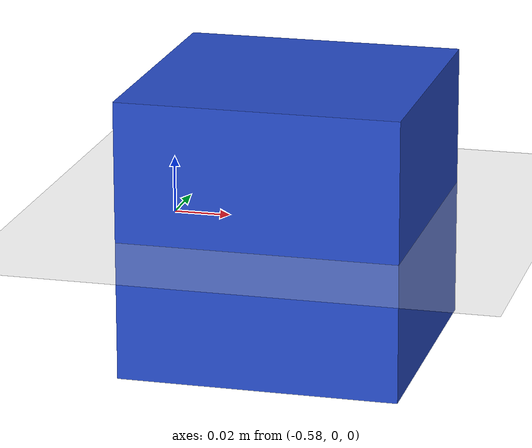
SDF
<?xml version="1.0" ?>
<sdf version="1.5">
  <world name="default">
    <light name='sun' type='directional'>
      <cast_shadows>1</cast_shadows>
      <pose>0 0 10 0 -0 0</pose>
      <diffuse>0.8 0.8 0.8 1</diffuse>
      <specular>0.2 0.2 0.2 1</specular>
      <attenuation>
        <range>1000</range>
        <constant>0.9</constant>
        <linear>0.01</linear>
        <quadratic>0.001</quadratic>
      </attenuation>
      <direction>-0.5 0.1 -0.9</direction>
      <spot>
        <inner_angle>0</inner_angle>
        <outer_angle>0</outer_angle>
        <falloff>0</falloff>
      </spot>
    </light>
    <model name='ground_plane'>
      <static>1</static>
      <link name='link'>
        <collision name='collision'>
          <geometry>
            <plane>
              <normal>0 0 1</normal>
              <size>100 100</size>
            </plane>
          </geometry>
          <surface>
            <contact>
              <collide_bitmask>65535</collide_bitmask>
              <ode/>
            </contact>
            <friction>
              <ode>
                <mu>100</mu>
                <mu2>50</mu2>
              </ode>
              <torsional>
                <ode/>
              </torsional>
            </friction>
            <bounce/>
          </surface>
          <max_contacts>10</max_contacts>
        </collision>
        <visual name='visual'>
          <cast_shadows>0</cast_shadows>
          <geometry>
            <plane>
              <normal>0 0 1</normal>
              <size>100 100</size>
            </plane>
          </geometry>
          <material>
            <script>
              <uri>file://media/materials/scripts/gazebo.material</uri>
              <name>Gazebo/Grey</name>
            </script>
          </material>
        </visual>
        <self_collide>0</self_collide>
        <enable_wind>0</enable_wind>
        <kinematic>0</kinematic>
      </link>
    </model>
    <gravity>0 0 -9.8</gravity>
    <magnetic_field>6e-06 2.3e-05 -4.2e-05</magnetic_field>
    <atmosphere type='adiabatic'/>
    <physics type='ode'>
      <max_step_size>0.001</max_step_size>
      <real_time_factor>1</real_time_factor>
      <real_time_update_rate>1000</real_time_update_rate>
    </physics>
    <scene>
      <ambient>0.4 0.4 0.4 1</ambient>
      <background>0.7 0.7 0.7 1</background>
      <shadows>1</shadows>
    </scene>
    <wind/>
    <model name="box_01">
      <pose>-0.54 0.01 0.0 0 0 0</pose>
      <link name="link">
        <collision name="collision">
          <geometry>
            <box>
              <size>0.1 0.1 0.1</size>
            </box>
          </geometry>
        </collision>
        <contact>
            <plugin name="box_01_contact_plugin" filename="libgazebo_ros_contact.so"/>
        </contact>
        <visual name="visual">
            <geometry>
                <box>
                <size>0.1 0.1 0.1</size>
                </box>
            </geometry>
            <material>
                <script>
                    <uri>file://media/materials/scripts/gazebo.material</uri>
                    <name>Gazebo/Blue</name>
                </script>
            </material>
        </visual>
        <inertial>
            <mass value="0.25"/>
            <inertia ixx="1e-1" ixy="0.0" ixz="0.0" iyy="1e-1" iyz="0.0" izz="1e-1"/>
        </inertial>
        <surface>
            <friction>
                <ode>
                    <mu>1.0</mu>
                    <mu2>1.0</mu2>
                </ode>
            </friction>
            <contact>
                <ode>
                    <kp>100</kp>
                    <kd>100</kd>
                    <min_depth>0.001</min_depth>
                    <max_vel>0.0</max_vel>
                </ode>
            </contact>
        </surface>
      </link>
    </model>

        <plugin name="gazebo_ros_state" filename="libgazebo_ros_state.so">
          <ros>
          </ros>
          <update_rate>1.0</update_rate>
        </plugin>

  </world>

    <gazebo reference="box_01">
        <material>Gazebo/Blue</material>
    </gazebo>

</sdf>
